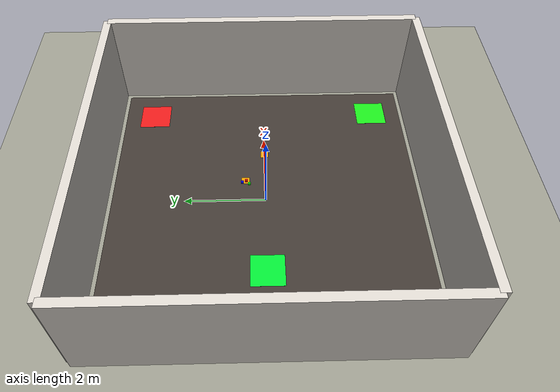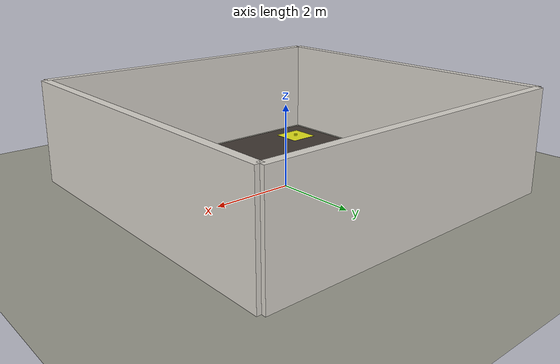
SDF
<sdf version="1.11">
 <world name="panda_world">
  <physics name="1ms" type="ignored">
   <max_step_size>0.001</max_step_size>
   <real_time_factor>1.0</real_time_factor>
   <real_time_update_rate>100</real_time_update_rate>
  </physics>
  <plugin filename="ignition-gazebo-physics-system" name="ignition::gazebo::systems::Physics">
   <engine><filename>gz-physics-dartsim-plugin</filename></engine>
  </plugin>
  <plugin filename="ignition-gazebo-user-commands-system" name="ignition::gazebo::systems::UserCommands"/>
  <plugin filename="ignition-gazebo-scene-broadcaster-system" name="ignition::gazebo::systems::SceneBroadcaster"/>
  <plugin filename="gz-sim-sensors-system" name="gz::sim::systems::Sensors">
   <render_engine>ogre2</render_engine>
  </plugin>
  <light type="directional" name="sun">
   <pose>0 0 10 0 0 0</pose>
   <diffuse>1.0 1.0 0.95 1</diffuse>
   <specular>0.3 0.3 0.3 1</specular>
   <attenuation>
    <range>1000</range>
    <constant>0.9</constant>
    <linear>0.01</linear>
    <quadratic>0.001</quadratic>
   </attenuation>
   <direction>-0.5 0.1 -0.9</direction>
  </light>
  <light type="directional" name="fill_light">
   <cast_shadows>false</cast_shadows>
   <pose>0 0 8 0 0 0</pose>
   <diffuse>0.4 0.4 0.5 1</diffuse>
   <specular>0.0 0.0 0.0 1</specular>
   <attenuation>
    <range>1000</range>
    <constant>0.9</constant>
    <linear>0.01</linear>
    <quadratic>0.001</quadratic>
   </attenuation>
   <direction>0.5 -0.1 -0.9</direction>
  </light>
  <model name="ground_plane">
   <static>true</static>
   <link name="link">
    <collision name="collision">
     <geometry><plane><normal>0 0 1</normal><size>100 100</size></plane></geometry>
    </collision>
    <visual name="visual">
     <geometry><plane><normal>0 0 1</normal><size>100 100</size></plane></geometry>
     <material>
      <ambient>0.6 0.6 0.55 1</ambient>
      <diffuse>0.6 0.6 0.55 1</diffuse>
      <specular>0.1 0.1 0.1 1</specular>
     </material>
    </visual>
   </link>
  </model>
  <model name="red_cube">
   <pose>0.60 0.48 0.03 0 0 0</pose>
   <link name="link">
    <inertial><mass>0.1</mass><inertia><ixx>0.00006</ixx><iyy>0.00006</iyy><izz>0.00006</izz></inertia></inertial>
    <collision name="collision"><geometry><box><size>0.06 0.06 0.06</size></box></geometry></collision>
    <visual name="visual">
     <geometry><box><size>0.06 0.06 0.06</size></box></geometry>
     <material><ambient>1 0 0 1</ambient><diffuse>1 0 0 1</diffuse></material>
    </visual>
   </link>
   <plugin filename="gz-sim-detachable-joint-system" name="gz::sim::systems::DetachableJoint">
    <parent_link>link</parent_link>
    <child_model>panda</child_model>
    <child_link>robotiq_85_base_link</child_link>
    <attach_topic>/model/red_cube/detachable_joint/attach</attach_topic>
    <detach_topic>/model/red_cube/detachable_joint/detach</detach_topic>
    <output_topic>/model/red_cube/detachable_joint/state</output_topic>
   </plugin>
   <plugin filename="gz-sim-detachable-joint-system" name="gz::sim::systems::DetachableJoint">
    <parent_link>link</parent_link>
    <child_model>panda2</child_model>
    <child_link>robotiq2_85_base_link</child_link>
    <attach_topic>/model/red_cube/detachable_joint2/attach</attach_topic>
    <detach_topic>/model/red_cube/detachable_joint2/detach</detach_topic>
    <output_topic>/model/red_cube/detachable_joint2/state</output_topic>
   </plugin>
  </model>
  <model name="blue_cube">
   <pose>0.55 0.58 0.03 0 0 0</pose>
   <link name="link">
    <inertial><mass>0.1</mass><inertia><ixx>0.00006</ixx><iyy>0.00006</iyy><izz>0.00006</izz></inertia></inertial>
    <collision name="collision"><geometry><box><size>0.06 0.06 0.06</size></box></geometry></collision>
    <visual name="visual">
     <geometry><box><size>0.06 0.06 0.06</size></box></geometry>
     <material><ambient>0 0 1 1</ambient><diffuse>0 0 1 1</diffuse></material>
    </visual>
   </link>
   <plugin filename="gz-sim-detachable-joint-system" name="gz::sim::systems::DetachableJoint">
    <parent_link>link</parent_link>
    <child_model>panda</child_model>
    <child_link>robotiq_85_base_link</child_link>
    <attach_topic>/model/blue_cube/detachable_joint/attach</attach_topic>
    <detach_topic>/model/blue_cube/detachable_joint/detach</detach_topic>
    <output_topic>/model/blue_cube/detachable_joint/state</output_topic>
   </plugin>
   <plugin filename="gz-sim-detachable-joint-system" name="gz::sim::systems::DetachableJoint">
    <parent_link>link</parent_link>
    <child_model>panda2</child_model>
    <child_link>robotiq2_85_base_link</child_link>
    <attach_topic>/model/blue_cube/detachable_joint2/attach</attach_topic>
    <detach_topic>/model/blue_cube/detachable_joint2/detach</detach_topic>
    <output_topic>/model/blue_cube/detachable_joint2/state</output_topic>
   </plugin>
  </model>
  <model name="green_cube">
   <pose>0.50 0.40 0.03 0 0 0</pose>
   <link name="link">
    <inertial><mass>0.1</mass><inertia><ixx>0.00006</ixx><iyy>0.00006</iyy><izz>0.00006</izz></inertia></inertial>
    <collision name="collision"><geometry><box><size>0.06 0.06 0.06</size></box></geometry></collision>
    <visual name="visual">
     <geometry><box><size>0.06 0.06 0.06</size></box></geometry>
     <material><ambient>0 1 0 1</ambient><diffuse>0 1 0 1</diffuse></material>
    </visual>
   </link>
   <plugin filename="gz-sim-detachable-joint-system" name="gz::sim::systems::DetachableJoint">
    <parent_link>link</parent_link>
    <child_model>panda</child_model>
    <child_link>robotiq_85_base_link</child_link>
    <attach_topic>/model/green_cube/detachable_joint/attach</attach_topic>
    <detach_topic>/model/green_cube/detachable_joint/detach</detach_topic>
    <output_topic>/model/green_cube/detachable_joint/state</output_topic>
   </plugin>
   <plugin filename="gz-sim-detachable-joint-system" name="gz::sim::systems::DetachableJoint">
    <parent_link>link</parent_link>
    <child_model>panda2</child_model>
    <child_link>robotiq2_85_base_link</child_link>
    <attach_topic>/model/green_cube/detachable_joint2/attach</attach_topic>
    <detach_topic>/model/green_cube/detachable_joint2/detach</detach_topic>
    <output_topic>/model/green_cube/detachable_joint2/state</output_topic>
   </plugin>
  </model>
  <model name="yellow_cube">
   <pose>-3 -3 0.03 0 0 0</pose>
   <link name="link">
    <inertial><mass>0.1</mass><inertia><ixx>0.00006</ixx><iyy>0.00006</iyy><izz>0.00006</izz></inertia></inertial>
    <collision name="collision"><geometry><box><size>0.06 0.06 0.06</size></box></geometry></collision>
    <visual name="visual">
     <geometry><box><size>0.06 0.06 0.06</size></box></geometry>
     <material><ambient>1 1 0 1</ambient><diffuse>1 1 0 1</diffuse></material>
    </visual>
   </link>
   <plugin filename="gz-sim-detachable-joint-system" name="gz::sim::systems::DetachableJoint">
    <parent_link>link</parent_link>
    <child_model>panda</child_model>
    <child_link>robotiq_85_base_link</child_link>
    <attach_topic>/model/yellow_cube/detachable_joint/attach</attach_topic>
    <detach_topic>/model/yellow_cube/detachable_joint/detach</detach_topic>
    <output_topic>/model/yellow_cube/detachable_joint/state</output_topic>
   </plugin>
  </model>
  <model name="wall_north">
   <static>true</static>
   <pose>0 4 1.25 0 0 0</pose>
   <link name="link">
    <collision name="collision"><geometry><box><size>8 0.2 2.5</size></box></geometry></collision>
    <visual name="visual">
     <geometry><box><size>8 0.2 2.5</size></box></geometry>
     <material>
      <ambient>0.85 0.83 0.80 1</ambient>
      <diffuse>0.85 0.83 0.80 1</diffuse>
      <specular>0.1 0.1 0.1 1</specular>
     </material>
    </visual>
   </link>
  </model>
  <model name="wall_south">
   <static>true</static>
   <pose>0 -4 1.25 0 0 0</pose>
   <link name="link">
    <collision name="collision"><geometry><box><size>8 0.2 2.5</size></box></geometry></collision>
    <visual name="visual">
     <geometry><box><size>8 0.2 2.5</size></box></geometry>
     <material>
      <ambient>0.85 0.83 0.80 1</ambient>
      <diffuse>0.85 0.83 0.80 1</diffuse>
      <specular>0.1 0.1 0.1 1</specular>
     </material>
    </visual>
   </link>
  </model>
  <model name="wall_east">
   <static>true</static>
   <pose>4 0 1.25 0 0 0</pose>
   <link name="link">
    <collision name="collision"><geometry><box><size>0.2 8 2.5</size></box></geometry></collision>
    <visual name="visual">
     <geometry><box><size>0.2 8 2.5</size></box></geometry>
     <material>
      <ambient>0.85 0.83 0.80 1</ambient>
      <diffuse>0.85 0.83 0.80 1</diffuse>
      <specular>0.1 0.1 0.1 1</specular>
     </material>
    </visual>
   </link>
  </model>
  <model name="wall_west">
   <static>true</static>
   <pose>-4 0 1.25 0 0 0</pose>
   <link name="link">
    <collision name="collision"><geometry><box><size>0.2 8 2.5</size></box></geometry></collision>
    <visual name="visual">
     <geometry><box><size>0.2 8 2.5</size></box></geometry>
     <material>
      <ambient>0.85 0.83 0.80 1</ambient>
      <diffuse>0.85 0.83 0.80 1</diffuse>
      <specular>0.1 0.1 0.1 1</specular>
     </material>
    </visual>
   </link>
  </model>
  <model name="drop_zone">
   <static>true</static>
   <pose>-2 0 0.006 0 0 0</pose>
   <link name="link">
    <visual name="visual">
     <geometry><box><size>0.8 0.8 0.01</size></box></geometry>
     <material><ambient>0.0 0.9 0.2 1</ambient><diffuse>0.0 0.9 0.2 1</diffuse></material>
    </visual>
   </link>
  </model>
  <model name="floor_mat">
   <static>true</static>
   <pose>0 0 0.005 0 0 0</pose>
   <link name="link">
    <collision name="collision"><geometry><box><size>7.6 7.6 0.01</size></box></geometry></collision>
    <visual name="visual">
     <geometry><box><size>7.6 7.6 0.01</size></box></geometry>
     <material>
      <ambient>0.2 0.18 0.16 1</ambient>
      <diffuse>0.25 0.22 0.20 1</diffuse>
      <specular>0.05 0.05 0.05 1</specular>
     </material>
    </visual>
   </link>
  </model>
  <model name="red_zone">
   <static>true</static>
   <pose>3 3 0.006 0 0 0</pose>
   <link name="link">
    <collision name="collision"><geometry><box><size>0.8 0.8 0.01</size></box></geometry></collision>
    <visual name="visual">
     <geometry><box><size>0.8 0.8 0.01</size></box></geometry>
     <material><ambient>0.9 0.1 0.1 1</ambient><diffuse>0.9 0.1 0.1 1</diffuse></material>
    </visual>
   </link>
  </model>
  <model name="blue_zone">
   <static>true</static>
   <pose>-3 3 0.006 0 0 0</pose>
   <link name="link">
    <collision name="collision"><geometry><box><size>0.8 0.8 0.01</size></box></geometry></collision>
    <visual name="visual">
     <geometry><box><size>0.8 0.8 0.01</size></box></geometry>
     <material><ambient>0.1 0.1 0.9 1</ambient><diffuse>0.1 0.1 0.9 1</diffuse></material>
    </visual>
   </link>
  </model>
  <model name="green_zone">
   <static>true</static>
   <pose>3 -3 0.006 0 0 0</pose>
   <link name="link">
    <collision name="collision"><geometry><box><size>0.8 0.8 0.01</size></box></geometry></collision>
    <visual name="visual">
     <geometry><box><size>0.8 0.8 0.01</size></box></geometry>
     <material><ambient>0.1 0.9 0.1 1</ambient><diffuse>0.1 0.9 0.1 1</diffuse></material>
    </visual>
   </link>
  </model>
  <model name="yellow_zone">
   <static>true</static>
   <pose>-3 -3 0.006 0 0 0</pose>
   <link name="link">
    <visual name="visual">
     <geometry><box><size>0.8 0.8 0.01</size></box></geometry>
     <material><ambient>0.9 0.9 0.1 1</ambient><diffuse>0.9 0.9 0.1 1</diffuse></material>
    </visual>
   </link>
  </model>
  <model name="handoff_point">
   <static>true</static>
   <pose>1.5 0 0.006 0 0 0</pose>
   <link name="link">
    <visual name="visual">
     <geometry><box><size>0.2 0.2 0.01</size></box></geometry>
     <material><ambient>0.9 0.6 0.0 1</ambient><diffuse>0.9 0.6 0.0 1</diffuse></material>
    </visual>
    <collision name="collision"><geometry><box><size>0.2 0.2 0.01</size></box></geometry></collision>
   </link>
  </model>
  <model name="pickup_point">
   <static>true</static>
   <pose>0.620 0.50 0.006 0 0 0</pose>
   <link name="link">
    <visual name="visual">
     <geometry><box><size>0.2 0.2 0.01</size></box></geometry>
     <material><ambient>0.9 0.6 0.0 1</ambient><diffuse>0.9 0.6 0.0 1</diffuse></material>
    </visual>
    <collision name="collision"><geometry><box><size>0.2 0.2 0.01</size></box></geometry></collision>
   </link>
  </model>
 </world>
</sdf>
